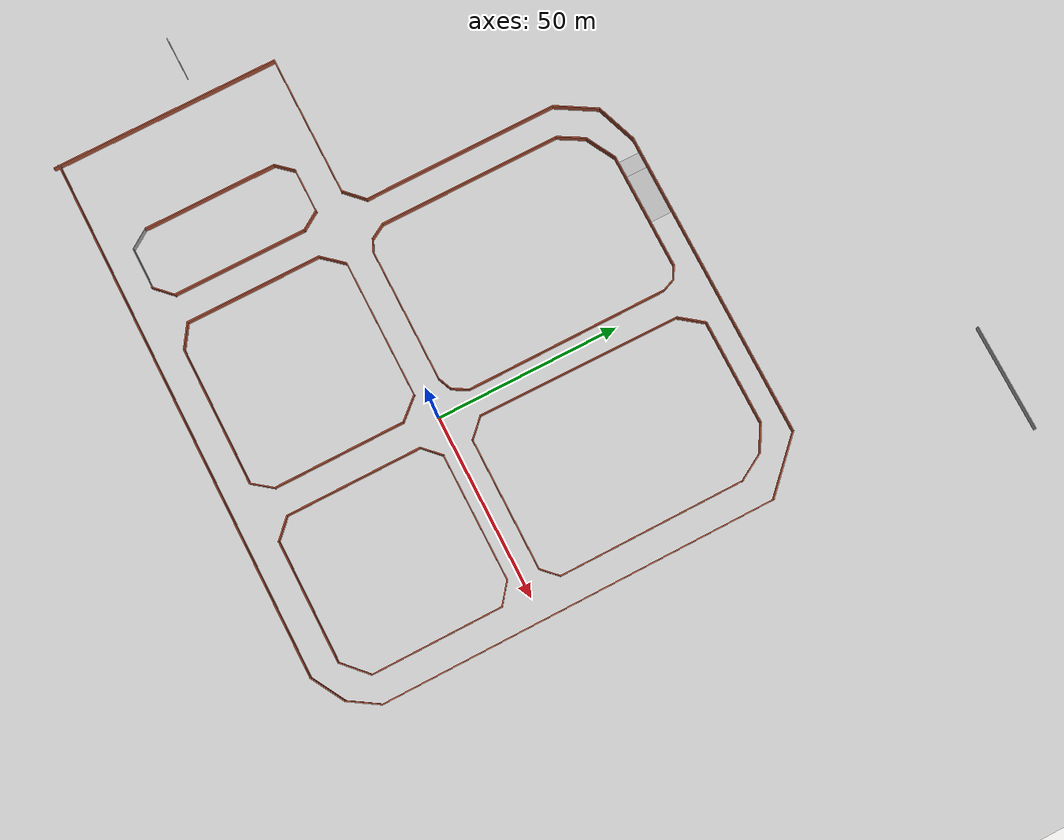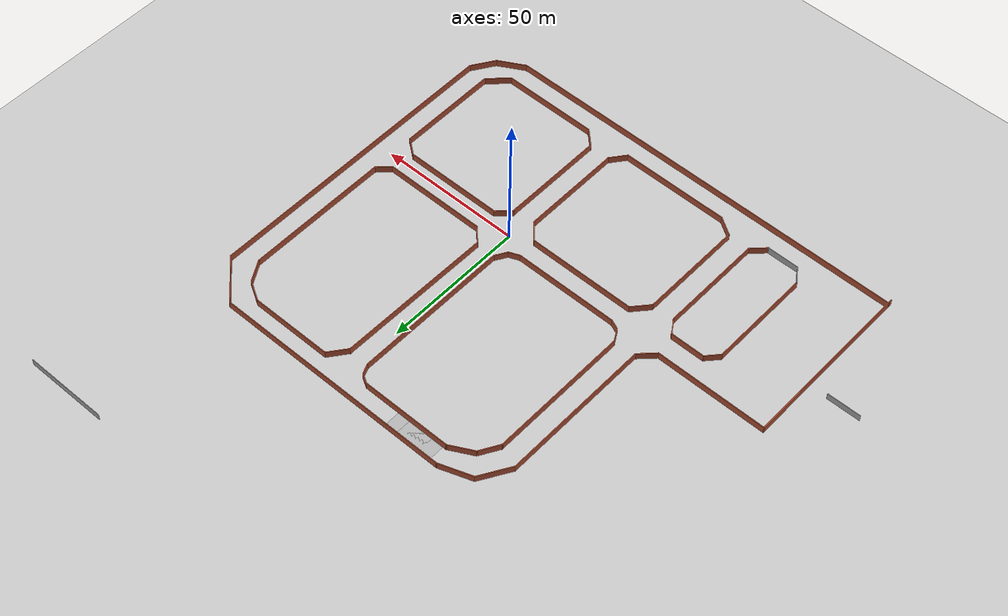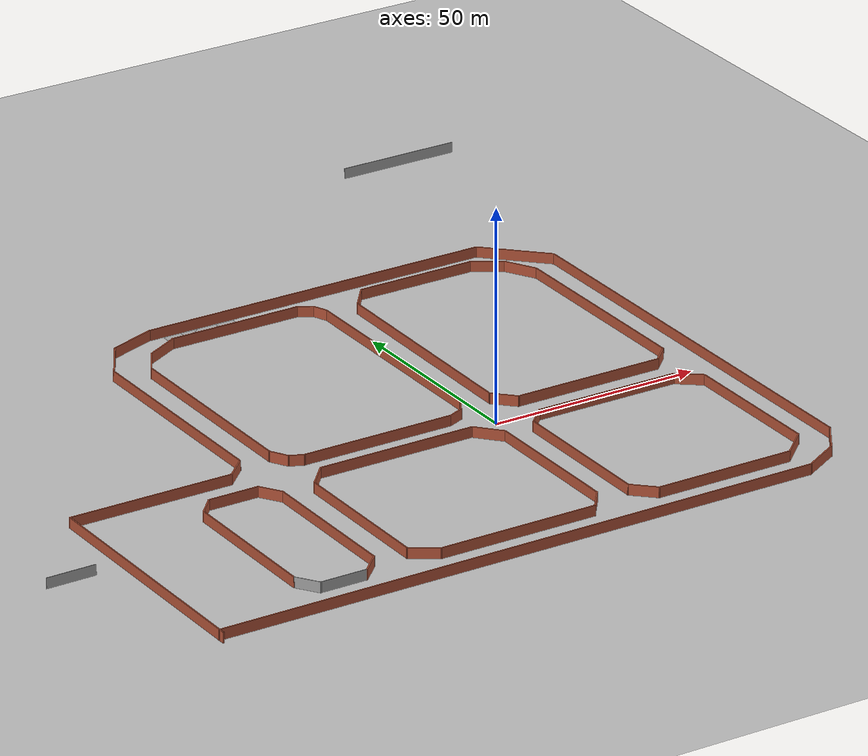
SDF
<sdf version="1.6">
 <world name="default">
  <model name="ground_plane">
   <pose>0 0 -1 0 -0 0</pose>
   <static>1</static>
   <link name="link">
    <collision name="collision">
     <geometry><plane><normal>0 0 1</normal><size>100 100</size></plane></geometry>
     <surface><friction><ode><mu>100</mu><mu2>50</mu2></ode></friction></surface>
    </collision>
    <visual name="visual">
     <cast_shadows>0</cast_shadows>
     <geometry><plane><normal>0 0 1</normal><size>100 100</size></plane></geometry>
     <material>
      <script><uri>file://media/materials/scripts/gazebo.material</uri><name>Gazebo/Grey</name></script>
     </material>
    </visual>
   </link>
  </model>
  <model name="taksiYol">
   <pose>-24.3729 36.1774 0 0 -0 0</pose>
   <link name="Wall_10">
    <collision name="Wall_10_Collision">
     <geometry><box><size>18.0312 0.3 2.5</size></box></geometry>
     <pose>0 0 1.25 0 -0 0</pose>
    </collision>
    <visual name="Wall_10_Visual">
     <pose>0 0 1.25 0 -0 0</pose>
     <geometry><box><size>18.0312 0.3 2.5</size></box></geometry>
     <material>
      <script><uri>file://media/materials/scripts/gazebo.material</uri><name>Gazebo/Bricks</name></script>
      <ambient>0.760784 0.662745 0.627451 1</ambient>
     </material>
    </visual>
    <pose>74.2438 34.0389 0 0 0 -0.77802</pose>
   </link>
   <link name="Wall_100">
    <collision name="Wall_100_Collision">
     <geometry><box><size>28.6496 0.3 2.5</size></box></geometry>
     <pose>0 0 1.25 0 -0 0</pose>
    </collision>
    <visual name="Wall_100_Visual">
     <pose>0 0 1.25 0 -0 0</pose>
     <geometry><box><size>28.6496 0.3 2.5</size></box></geometry>
     <material>
      <script><uri>file://media/materials/scripts/gazebo.material</uri><name>Gazebo/Bricks</name></script>
      <ambient>0.760784 0.662745 0.627451 1</ambient>
     </material>
    </visual>
    <pose>48.1918 34.1744 0 0 -0 3.14068</pose>
   </link>
   <link name="Wall_102">
    <collision name="Wall_102_Collision">
     <geometry><box><size>6.3995 0.3 2.5</size></box></geometry>
     <pose>0 0 1.25 0 -0 0</pose>
    </collision>
    <visual name="Wall_102_Visual">
     <pose>0 0 1.25 0 -0 0</pose>
     <geometry><box><size>6.3995 0.3 2.5</size></box></geometry>
     <material>
      <script><uri>file://media/materials/scripts/gazebo.material</uri><name>Gazebo/Bricks</name></script>
      <ambient>0.760784 0.662745 0.627451 1</ambient>
     </material>
    </visual>
    <pose>-35.7537 -82.7531 0 0 -0 0.785398</pose>
   </link>
   <link name="Wall_103">
    <collision name="Wall_103_Collision">
     <geometry><box><size>36.349 0.3 2.5</size></box></geometry>
     <pose>0 0 1.25 0 -0 0</pose>
    </collision>
    <visual name="Wall_103_Visual">
     <pose>0 0 1.25 0 -0 0</pose>
     <geometry><box><size>36.349 0.3 2.5</size></box></geometry>
     <material>
      <script><uri>file://media/materials/scripts/gazebo.material</uri><name>Gazebo/Bricks</name></script>
      <ambient>0.760784 0.662745 0.627451 1</ambient>
     </material>
    </visual>
    <pose>-33.5972 -62.5721 0 0 -0 1.5708</pose>
   </link>
   <link name="Wall_104">
    <collision name="Wall_104_Collision">
     <geometry><box><size>6.02982 0.3 2.5</size></box></geometry>
     <pose>0 0 1.25 0 -0 0</pose>
    </collision>
    <visual name="Wall_104_Visual">
     <pose>0 0 1.25 0 -0 0</pose>
     <geometry><box><size>6.02982 0.3 2.5</size></box></geometry>
     <material>
      <script><uri>file://media/materials/scripts/gazebo.material</uri><name>Gazebo/Bricks</name></script>
      <ambient>0.760784 0.662745 0.627451 1</ambient>
     </material>
    </visual>
    <pose>-35.1517 -42.1411 0 0 -0 2.14432</pose>
   </link>
   <link name="Wall_106">
    <collision name="Wall_106_Collision">
     <geometry><box><size>12.2451 0.3 2.5</size></box></geometry>
     <pose>0 0 1.25 0 -0 0</pose>
    </collision>
    <visual name="Wall_106_Visual">
     <pose>0 0 1.25 0 -0 0</pose>
     <geometry><box><size>12.2451 0.3 2.5</size></box></geometry>
     <material>
      <script><uri>file://media/materials/scripts/gazebo.material</uri><name>Gazebo/Bricks</name></script>
      <ambient>0.760784 0.662745 0.627451 1</ambient>
     </material>
    </visual>
    <pose>-42.6787 -39.7341 0 0 0 -8.4e-05</pose>
   </link>
   <link name="Wall_19">
    <collision name="Wall_19_Collision">
     <geometry><box><size>144.415 0.3 2.5</size></box></geometry>
     <pose>0 0 1.25 0 -0 0</pose>
    </collision>
    <visual name="Wall_19_Visual">
     <pose>0 0 1.25 0 -0 0</pose>
     <geometry><box><size>144.415 0.3 2.5</size></box></geometry>
     <material>
      <script><uri>file://media/materials/scripts/gazebo.material</uri><name>Gazebo/Bricks</name></script>
      <ambient>0.760784 0.662745 0.627451 1</ambient>
     </material>
    </visual>
    <pose>-5.1646 -92.3029 0 0 0 -3.14128</pose>
   </link>
   <link name="Wall_2">
    <collision name="Wall_2_Collision">
     <geometry><box><size>62.289 0.3 2.5</size></box></geometry>
     <pose>0 0 1.25 0 -0 0</pose>
    </collision>
    <visual name="Wall_2_Visual">
     <pose>0 0 1.25 0 -0 0</pose>
     <geometry><box><size>62.289 0.3 2.5</size></box></geometry>
     <material>
      <script><uri>file://media/materials/scripts/gazebo.material</uri><name>Gazebo/Bricks</name></script>
      <ambient>0.760784 0.662745 0.627451 1</ambient>
     </material>
    </visual>
    <pose>-77.1823 -62.6861 0 0 -0 1.57079</pose>
   </link>
   <link name="Wall_20">
    <collision name="Wall_20_Collision">
     <geometry><box><size>0.388213 0.15 2.5</size></box></geometry>
     <pose>0 0 1.25 0 -0 0</pose>
    </collision>
    <visual name="Wall_20_Visual">
     <pose>0 0 1.25 0 -0 0</pose>
     <geometry><box><size>0.388213 0.15 2.5</size></box></geometry>
     <material>
      <script><uri>file://media/materials/scripts/gazebo.material</uri><name>Gazebo/Grey</name></script>
      <ambient>1 1 1 1</ambient>
     </material>
    </visual>
    <pose>-77.0291 -92.219 0 0 -0 1.10246</pose>
   </link>
   <link name="Wall_28">
    <collision name="Wall_28_Collision">
     <geometry><box><size>107.778 0.3 2.5</size></box></geometry>
     <pose>0 0 1.25 0 -0 0</pose>
    </collision>
    <visual name="Wall_28_Visual">
     <pose>0 0 1.25 0 -0 0</pose>
     <geometry><box><size>107.778 0.3 2.5</size></box></geometry>
     <material>
      <script><uri>file://media/materials/scripts/gazebo.material</uri><name>Gazebo/Bricks</name></script>
      <ambient>0.760784 0.662745 0.627451 1</ambient>
     </material>
    </visual>
    <pose>80.5423 -25.9226 0 0 -0 1.57049</pose>
   </link>
   <link name="Wall_30">
    <collision name="Wall_30_Collision">
     <geometry><box><size>12.1991 0.3 2.5</size></box></geometry>
     <pose>0 0 1.25 0 -0 0</pose>
    </collision>
    <visual name="Wall_30_Visual">
     <pose>0 0 1.25 0 -0 0</pose>
     <geometry><box><size>12.1991 0.3 2.5</size></box></geometry>
     <material>
      <script><uri>file://media/materials/scripts/gazebo.material</uri><name>Gazebo/Bricks</name></script>
      <ambient>0.760784 0.662745 0.627451 1</ambient>
     </material>
    </visual>
    <pose>-30.4626 31.2128 0 0 -0 1.03362</pose>
   </link>
   <link name="Wall_31">
    <collision name="Wall_31_Collision">
     <geometry><box><size>11.9805 0.3 2.5</size></box></geometry>
     <pose>0 0 1.25 0 -0 0</pose>
    </collision>
    <visual name="Wall_31_Visual">
     <pose>0 0 1.25 0 -0 0</pose>
     <geometry><box><size>11.9805 0.3 2.5</size></box></geometry>
     <material>
      <script><uri>file://media/materials/scripts/gazebo.material</uri><name>Gazebo/Bricks</name></script>
      <ambient>0.760784 0.662745 0.627451 1</ambient>
     </material>
    </visual>
    <pose>-21.9197 38.2929 0 0 -0 0.34379</pose>
   </link>
   <link name="Wall_33">
    <collision name="Wall_33_Collision">
     <geometry><box><size>31.9 0.3 2.5</size></box></geometry>
     <pose>0 0 1.25 0 -0 0</pose>
    </collision>
    <visual name="Wall_33_Visual">
     <pose>0 0 1.25 0 -0 0</pose>
     <geometry><box><size>31.9 0.3 2.5</size></box></geometry>
     <material>
      <script><uri>file://media/materials/scripts/gazebo.material</uri><name>Gazebo/Bricks</name></script>
      <ambient>0.760784 0.662745 0.627451 1</ambient>
     </material>
    </visual>
    <pose>1.55483 33.8794 0 0 -0 0</pose>
   </link>
   <link name="Wall_34">
    <collision name="Wall_34_Collision">
     <geometry><box><size>3.8606 0.3 2.5</size></box></geometry>
     <pose>0 0 1.25 0 -0 0</pose>
    </collision>
    <visual name="Wall_34_Visual">
     <pose>0 0 1.25 0 -0 0</pose>
     <geometry><box><size>3.8606 0.3 2.5</size></box></geometry>
     <material>
      <script><uri>file://media/materials/scripts/gazebo.material</uri><name>Gazebo/Bricks</name></script>
      <ambient>0.760784 0.662745 0.627451 1</ambient>
     </material>
    </visual>
    <pose>18.8908 32.9794 0 0 0 -0.530015</pose>
   </link>
   <link name="Wall_35">
    <collision name="Wall_35_Collision">
     <geometry><box><size>3.92162 0.3 2.5</size></box></geometry>
     <pose>0 0 1.25 0 -0 0</pose>
    </collision>
    <visual name="Wall_35_Visual">
     <pose>0 0 1.25 0 -0 0</pose>
     <geometry><box><size>3.92162 0.3 2.5</size></box></geometry>
     <material>
      <script><uri>file://media/materials/scripts/gazebo.material</uri><name>Gazebo/Bricks</name></script>
      <ambient>0.760784 0.662745 0.627451 1</ambient>
     </material>
    </visual>
    <pose>21.1248 30.4084 0 0 0 -1.17511</pose>
   </link>
   <link name="Wall_36">
    <collision name="Wall_36_Collision">
     <geometry><box><size>55.1498 0.3 2.5</size></box></geometry>
     <pose>0 0 1.25 0 -0 0</pose>
    </collision>
    <visual name="Wall_36_Visual">
     <pose>0 0 1.25 0 -0 0</pose>
     <geometry><box><size>55.1498 0.3 2.5</size></box></geometry>
     <material>
      <script><uri>file://media/materials/scripts/gazebo.material</uri><name>Gazebo/Bricks</name></script>
      <ambient>0.760784 0.662745 0.627451 1</ambient>
     </material>
    </visual>
    <pose>21.7828 1.3124 0 0 0 -1.57225</pose>
   </link>
   <link name="Wall_37">
    <collision name="Wall_37_Collision">
     <geometry><box><size>4.90024 0.3 2.5</size></box></geometry>
     <pose>0 0 1.25 0 -0 0</pose>
    </collision>
    <visual name="Wall_37_Visual">
     <pose>0 0 1.25 0 -0 0</pose>
     <geometry><box><size>4.90024 0.3 2.5</size></box></geometry>
     <material>
      <script><uri>file://media/materials/scripts/gazebo.material</uri><name>Gazebo/Bricks</name></script>
      <ambient>0.760784 0.662745 0.627451 1</ambient>
     </material>
    </visual>
    <pose>20.5928 -28.1046 0 0 0 -2.09436</pose>
   </link>
   <link name="Wall_38">
    <collision name="Wall_38_Collision">
     <geometry><box><size>4.21544 0.3 2.5</size></box></geometry>
     <pose>0 0 1.25 0 -0 0</pose>
    </collision>
    <visual name="Wall_38_Visual">
     <pose>0 0 1.25 0 -0 0</pose>
     <geometry><box><size>4.21544 0.3 2.5</size></box></geometry>
     <material>
      <script><uri>file://media/materials/scripts/gazebo.material</uri><name>Gazebo/Bricks</name></script>
      <ambient>0.760784 0.662745 0.627451 1</ambient>
     </material>
    </visual>
    <pose>17.6418 -30.8641 0 0 0 -2.73875</pose>
   </link>
   <link name="Wall_39">
    <collision name="Wall_39_Collision">
     <geometry><box><size>36.6502 0.3 2.5</size></box></geometry>
     <pose>0 0 1.25 0 -0 0</pose>
    </collision>
    <visual name="Wall_39_Visual">
     <pose>0 0 1.25 0 -0 0</pose>
     <geometry><box><size>36.6502 0.3 2.5</size></box></geometry>
     <material>
      <script><uri>file://media/materials/scripts/gazebo.material</uri><name>Gazebo/Bricks</name></script>
      <ambient>0.760784 0.662745 0.627451 1</ambient>
     </material>
    </visual>
    <pose>-2.33417 -31.6316 0 0 -0 3.14159</pose>
   </link>
   <link name="Wall_40">
    <collision name="Wall_40_Collision">
     <geometry><box><size>3.68766 0.3 2.5</size></box></geometry>
     <pose>0 0 1.25 0 -0 0</pose>
    </collision>
    <visual name="Wall_40_Visual">
     <pose>0 0 1.25 0 -0 0</pose>
     <geometry><box><size>3.68766 0.3 2.5</size></box></geometry>
     <material>
      <script><uri>file://media/materials/scripts/gazebo.material</uri><name>Gazebo/Bricks</name></script>
      <ambient>0.760784 0.662745 0.627451 1</ambient>
     </material>
    </visual>
    <pose>-22.0652 -30.9621 0 0 -0 2.73527</pose>
   </link>
   <link name="Wall_41">
    <collision name="Wall_41_Collision">
     <geometry><box><size>4.90013 0.3 2.5</size></box></geometry>
     <pose>0 0 1.25 0 -0 0</pose>
    </collision>
    <visual name="Wall_41_Visual">
     <pose>0 0 1.25 0 -0 0</pose>
     <geometry><box><size>4.90013 0.3 2.5</size></box></geometry>
     <material>
      <script><uri>file://media/materials/scripts/gazebo.material</uri><name>Gazebo/Bricks</name></script>
      <ambient>0.760784 0.662745 0.627451 1</ambient>
     </material>
    </visual>
    <pose>-24.7712 -28.3006 0 0 -0 2.09436</pose>
   </link>
   <link name="Wall_42">
    <collision name="Wall_42_Collision">
     <geometry><box><size>49.6501 0.3 2.5</size></box></geometry>
     <pose>0 0 1.25 0 -0 0</pose>
    </collision>
    <visual name="Wall_42_Visual">
     <pose>0 0 1.25 0 -0 0</pose>
     <geometry><box><size>49.6501 0.3 2.5</size></box></geometry>
     <material>
      <script><uri>file://media/materials/scripts/gazebo.material</uri><name>Gazebo/Bricks</name></script>
      <ambient>0.760784 0.662745 0.627451 1</ambient>
     </material>
    </visual>
    <pose>-25.9212 -1.6336 0 0 -0 1.5708</pose>
   </link>
   <link name="Wall_43">
    <collision name="Wall_43_Collision">
     <geometry><box><size>7.90018 0.3 2.5</size></box></geometry>
     <pose>0 0 1.25 0 -0 0</pose>
    </collision>
    <visual name="Wall_43_Visual">
     <pose>0 0 1.25 0 -0 0</pose>
     <geometry><box><size>7.90018 0.3 2.5</size></box></geometry>
     <material>
      <script><uri>file://media/materials/scripts/gazebo.material</uri><name>Gazebo/Bricks</name></script>
      <ambient>0.760784 0.662745 0.627451 1</ambient>
     </material>
    </visual>
    <pose>-24.0212 26.3324 0 0 -0 1.04721</pose>
   </link>
   <link name="Wall_44">
    <collision name="Wall_44_Collision">
     <geometry><box><size>9.25237 0.3 2.5</size></box></geometry>
     <pose>0 0 1.25 0 -0 0</pose>
    </collision>
    <visual name="Wall_44_Visual">
     <pose>0 0 1.25 0 -0 0</pose>
     <geometry><box><size>9.25237 0.3 2.5</size></box></geometry>
     <material>
      <script><uri>file://media/materials/scripts/gazebo.material</uri><name>Gazebo/Bricks</name></script>
      <ambient>0.760784 0.662745 0.627451 1</ambient>
     </material>
    </visual>
    <pose>-18.1832 31.7514 0 0 -0 0.495424</pose>
   </link>
   <link name="Wall_48">
    <collision name="Wall_48_Collision">
     <geometry><box><size>11.7505 0.15 2.5</size></box></geometry>
     <pose>0 0 1.25 0 -0 0</pose>
    </collision>
    <visual name="Wall_48_Visual">
     <pose>0 0 1.25 0 -0 0</pose>
     <geometry><box><size>11.7505 0.15 2.5</size></box></geometry>
     <material>
      <script><uri>file://media/materials/scripts/gazebo.material</uri><name>Gazebo/Grey</name></script>
      <ambient>1 1 1 1</ambient>
     </material>
    </visual>
    <pose>-89.3267 -53.5426 0 0 -0 0.008844</pose>
   </link>
   <link name="Wall_52">
    <collision name="Wall_52_Collision">
     <geometry><box><size>11.25 0.15 2.5</size></box></geometry>
     <pose>0 0 1.25 0 -0 0</pose>
    </collision>
    <visual name="Wall_52_Visual">
     <pose>0 0 1.25 0 -0 0</pose>
     <geometry><box><size>11.25 0.15 2.5</size></box></geometry>
     <material>
      <script><uri>file://media/materials/scripts/gazebo.material</uri><name>Gazebo/Grey</name></script>
      <ambient>1 1 1 1</ambient>
     </material>
    </visual>
    <pose>-43.4601 -84.9096 0 0 0 -3.14159</pose>
   </link>
   <link name="Wall_53">
    <collision name="Wall_53_Collision">
     <geometry><box><size>6.25105 0.15 2.5</size></box></geometry>
     <pose>0 0 1.25 0 -0 0</pose>
    </collision>
    <visual name="Wall_53_Visual">
     <pose>0 0 1.25 0 -0 0</pose>
     <geometry><box><size>6.25105 0.15 2.5</size></box></geometry>
     <material>
      <script><uri>file://media/materials/scripts/gazebo.material</uri><name>Gazebo/Grey</name></script>
      <ambient>1 1 1 1</ambient>
     </material>
    </visual>
    <pose>-50.6298 -82.4944 0 0 -0 2.17074</pose>
   </link>
   <link name="Wall_54">
    <collision name="Wall_54_Collision">
     <geometry><box><size>36.4 0.3 2.5</size></box></geometry>
     <pose>0 0 1.25 0 -0 0</pose>
    </collision>
    <visual name="Wall_54_Visual">
     <pose>0 0 1.25 0 -0 0</pose>
     <geometry><box><size>36.4 0.3 2.5</size></box></geometry>
     <material>
      <script><uri>file://media/materials/scripts/gazebo.material</uri><name>Gazebo/Bricks</name></script>
      <ambient>0.760784 0.662745 0.627451 1</ambient>
     </material>
    </visual>
    <pose>-52.3522 -61.9266 0 0 -0 1.5708</pose>
   </link>
   <link name="Wall_55">
    <collision name="Wall_55_Collision">
     <geometry><box><size>5.85534 0.3 2.5</size></box></geometry>
     <pose>0 0 1.25 0 -0 0</pose>
    </collision>
    <visual name="Wall_55_Visual">
     <pose>0 0 1.25 0 -0 0</pose>
     <geometry><box><size>5.85534 0.3 2.5</size></box></geometry>
     <material>
      <script><uri>file://media/materials/scripts/gazebo.material</uri><name>Gazebo/Bricks</name></script>
      <ambient>0.760784 0.662745 0.627451 1</ambient>
     </material>
    </visual>
    <pose>-50.5017 -41.8051 0 0 -0 0.841687</pose>
   </link>
   <link name="Wall_57">
    <collision name="Wall_57_Collision">
     <geometry><box><size>37.9 0.3 2.5</size></box></geometry>
     <pose>0 0 1.25 0 -0 0</pose>
    </collision>
    <visual name="Wall_57_Visual">
     <pose>0 0 1.25 0 -0 0</pose>
     <geometry><box><size>37.9 0.3 2.5</size></box></geometry>
     <material>
      <script><uri>file://media/materials/scripts/gazebo.material</uri><name>Gazebo/Bricks</name></script>
      <ambient>0.760784 0.662745 0.627451 1</ambient>
     </material>
    </visual>
    <pose>-2.17517 -38.8776 0 0 -0 0</pose>
   </link>
   <link name="Wall_58">
    <collision name="Wall_58_Collision">
     <geometry><box><size>7.63118 0.3 2.5</size></box></geometry>
     <pose>0 0 1.25 0 -0 0</pose>
    </collision>
    <visual name="Wall_58_Visual">
     <pose>0 0 1.25 0 -0 0</pose>
     <geometry><box><size>7.63118 0.3 2.5</size></box></geometry>
     <material>
      <script><uri>file://media/materials/scripts/gazebo.material</uri><name>Gazebo/Bricks</name></script>
      <ambient>0.760784 0.662745 0.627451 1</ambient>
     </material>
    </visual>
    <pose>19.0648 -41.6131 0 0 0 -0.842432</pose>
   </link>
   <link name="Wall_59">
    <collision name="Wall_59_Collision">
     <geometry><box><size>35.65 0.3 2.5</size></box></geometry>
     <pose>0 0 1.25 0 -0 0</pose>
    </collision>
    <visual name="Wall_59_Visual">
     <pose>0 0 1.25 0 -0 0</pose>
     <geometry><box><size>35.65 0.3 2.5</size></box></geometry>
     <material>
      <script><uri>file://media/materials/scripts/gazebo.material</uri><name>Gazebo/Bricks</name></script>
      <ambient>0.760784 0.662745 0.627451 1</ambient>
     </material>
    </visual>
    <pose>21.5048 -62.0236 0 0 0 -1.5708</pose>
   </link>
   <link name="Wall_60">
    <collision name="Wall_60_Collision">
     <geometry><box><size>6.64794 0.3 2.5</size></box></geometry>
     <pose>0 0 1.25 0 -0 0</pose>
    </collision>
    <visual name="Wall_60_Visual">
     <pose>0 0 1.25 0 -0 0</pose>
     <geometry><box><size>6.64794 0.3 2.5</size></box></geometry>
     <material>
      <script><uri>file://media/materials/scripts/gazebo.material</uri><name>Gazebo/Bricks</name></script>
      <ambient>0.760784 0.662745 0.627451 1</ambient>
     </material>
    </visual>
    <pose>19.5738 -82.2176 0 0 0 -2.22482</pose>
   </link>
   <link name="Wall_61">
    <collision name="Wall_61_Collision">
     <geometry><box><size>37.8997 0.3 2.5</size></box></geometry>
     <pose>0 0 1.25 0 -0 0</pose>
    </collision>
    <visual name="Wall_61_Visual">
     <pose>0 0 1.25 0 -0 0</pose>
     <geometry><box><size>37.8997 0.3 2.5</size></box></geometry>
     <material>
      <script><uri>file://media/materials/scripts/gazebo.material</uri><name>Gazebo/Bricks</name></script>
      <ambient>0.760784 0.662745 0.627451 1</ambient>
     </material>
    </visual>
    <pose>-1.15717 -84.7166 0 0 -0 3.14053</pose>
   </link>
   <link name="Wall_62">
    <collision name="Wall_62_Collision">
     <geometry><box><size>7.28015 0.3 2.5</size></box></geometry>
     <pose>0 0 1.25 0 -0 0</pose>
    </collision>
    <visual name="Wall_62_Visual">
     <pose>0 0 1.25 0 -0 0</pose>
     <geometry><box><size>7.28015 0.3 2.5</size></box></geometry>
     <material>
      <script><uri>file://media/materials/scripts/gazebo.material</uri><name>Gazebo/Bricks</name></script>
      <ambient>0.760784 0.662745 0.627451 1</ambient>
     </material>
    </visual>
    <pose>-22.8797 -82.7886 0 0 -0 2.56321</pose>
   </link>
   <link name="Wall_63">
    <collision name="Wall_63_Collision">
     <geometry><box><size>36.8614 0.3 2.5</size></box></geometry>
     <pose>0 0 1.25 0 -0 0</pose>
    </collision>
    <visual name="Wall_63_Visual">
     <pose>0 0 1.25 0 -0 0</pose>
     <geometry><box><size>36.8614 0.3 2.5</size></box></geometry>
     <material>
      <script><uri>file://media/materials/scripts/gazebo.material</uri><name>Gazebo/Bricks</name></script>
      <ambient>0.760784 0.662745 0.627451 1</ambient>
     </material>
    </visual>
    <pose>-25.8022 -62.6001 0 0 -0 1.5708</pose>
   </link>
   <link name="Wall_64">
    <collision name="Wall_64_Collision">
     <geometry><box><size>7.49247 0.3 2.5</size></box></geometry>
     <pose>0 0 1.25 0 -0 0</pose>
    </collision>
    <visual name="Wall_64_Visual">
     <pose>0 0 1.25 0 -0 0</pose>
     <geometry><box><size>7.49247 0.3 2.5</size></box></geometry>
     <material>
      <script><uri>file://media/materials/scripts/gazebo.material</uri><name>Gazebo/Bricks</name></script>
      <ambient>0.760784 0.662745 0.627451 1</ambient>
     </material>
    </visual>
    <pose>-23.4307 -41.6161 0 0 -0 0.850724</pose>
   </link>
   <link name="Wall_69">
    <collision name="Wall_69_Collision">
     <geometry><box><size>39.15 0.3 2.5</size></box></geometry>
     <pose>0 0 1.25 0 -0 0</pose>
    </collision>
    <visual name="Wall_69_Visual">
     <pose>0 0 1.25 0 -0 0</pose>
     <geometry><box><size>39.15 0.3 2.5</size></box></geometry>
     <material>
      <script><uri>file://media/materials/scripts/gazebo.material</uri><name>Gazebo/Bricks</name></script>
      <ambient>0.760784 0.662745 0.627451 1</ambient>
     </material>
    </visual>
    <pose>-57.7572 -31.6916 0 0 -0 0</pose>
   </link>
   <link name="Wall_70">
    <collision name="Wall_70_Collision">
     <geometry><box><size>7.12222 0.3 2.5</size></box></geometry>
     <pose>0 0 1.25 0 -0 0</pose>
    </collision>
    <visual name="Wall_70_Visual">
     <pose>0 0 1.25 0 -0 0</pose>
     <geometry><box><size>7.12222 0.3 2.5</size></box></geometry>
     <material>
      <script><uri>file://media/materials/scripts/gazebo.material</uri><name>Gazebo/Bricks</name></script>
      <ambient>0.760784 0.662745 0.627451 1</ambient>
     </material>
    </visual>
    <pose>-35.9107 -29.2891 0 0 -0 0.78146</pose>
   </link>
   <link name="Wall_72">
    <collision name="Wall_72_Collision">
     <geometry><box><size>53.2861 0.3 2.5</size></box></geometry>
     <pose>0 0 1.25 0 -0 0</pose>
    </collision>
    <visual name="Wall_72_Visual">
     <pose>0 0 1.25 0 -0 0</pose>
     <geometry><box><size>53.2861 0.3 2.5</size></box></geometry>
     <material>
      <script><uri>file://media/materials/scripts/gazebo.material</uri><name>Gazebo/Bricks</name></script>
      <ambient>0.760784 0.662745 0.627451 1</ambient>
     </material>
    </visual>
    <pose>-33.5187 -0.393597 0 0 -0 1.57191</pose>
   </link>
   <link name="Wall_73">
    <collision name="Wall_73_Collision">
     <geometry><box><size>0.181339 0.15 2.5</size></box></geometry>
     <pose>0 0 1.25 0 -0 0</pose>
    </collision>
    <visual name="Wall_73_Visual">
     <pose>0 0 1.25 0 -0 0</pose>
     <geometry><box><size>0.181339 0.15 2.5</size></box></geometry>
     <material>
      <script><uri>file://media/materials/scripts/gazebo.material</uri><name>Gazebo/Grey</name></script>
      <ambient>1 1 1 1</ambient>
     </material>
    </visual>
    <pose>-33.5434 26.0845 0 0 0 -1.25908</pose>
   </link>
   <link name="Wall_75">
    <collision name="Wall_75_Collision">
     <geometry><box><size>34.6499 0.3 2.5</size></box></geometry>
     <pose>0 0 1.25 0 -0 0</pose>
    </collision>
    <visual name="Wall_75_Visual">
     <pose>0 0 1.25 0 -0 0</pose>
     <geometry><box><size>34.6499 0.3 2.5</size></box></geometry>
     <material>
      <script><uri>file://media/materials/scripts/gazebo.material</uri><name>Gazebo/Bricks</name></script>
      <ambient>0.760784 0.662745 0.627451 1</ambient>
     </material>
    </visual>
    <pose>50.6358 -39.2886 0 0 -0 0</pose>
   </link>
   <link name="Wall_76">
    <collision name="Wall_76_Collision">
     <geometry><box><size>6.94108 0.3 2.5</size></box></geometry>
     <pose>0 0 1.25 0 -0 0</pose>
    </collision>
    <visual name="Wall_76_Visual">
     <pose>0 0 1.25 0 -0 0</pose>
     <geometry><box><size>6.94108 0.3 2.5</size></box></geometry>
     <material>
      <script><uri>file://media/materials/scripts/gazebo.material</uri><name>Gazebo/Bricks</name></script>
      <ambient>0.760784 0.662745 0.627451 1</ambient>
     </material>
    </visual>
    <pose>70.4218 -41.3401 0 0 0 -0.665969</pose>
   </link>
   <link name="Wall_77">
    <collision name="Wall_77_Collision">
     <geometry><box><size>35.65 0.3 2.5</size></box></geometry>
     <pose>0 0 1.25 0 -0 0</pose>
    </collision>
    <visual name="Wall_77_Visual">
     <pose>0 0 1.25 0 -0 0</pose>
     <geometry><box><size>35.65 0.3 2.5</size></box></geometry>
     <material>
      <script><uri>file://media/materials/scripts/gazebo.material</uri><name>Gazebo/Bricks</name></script>
      <ambient>0.760784 0.662745 0.627451 1</ambient>
     </material>
    </visual>
    <pose>73.0328 -61.0666 0 0 0 -1.5708</pose>
   </link>
   <link name="Wall_78">
    <collision name="Wall_78_Collision">
     <geometry><box><size>8.98794 0.3 2.5</size></box></geometry>
     <pose>0 0 1.25 0 -0 0</pose>
    </collision>
    <visual name="Wall_78_Visual">
     <pose>0 0 1.25 0 -0 0</pose>
     <geometry><box><size>8.98794 0.3 2.5</size></box></geometry>
     <material>
      <script><uri>file://media/materials/scripts/gazebo.material</uri><name>Gazebo/Bricks</name></script>
      <ambient>0.760784 0.662745 0.627451 1</ambient>
     </material>
    </visual>
    <pose>69.8698 -81.7191 0 0 0 -2.38639</pose>
   </link>
   <link name="Wall_79">
    <collision name="Wall_79_Collision">
     <geometry><box><size>33.225 0.3 2.5</size></box></geometry>
     <pose>0 0 1.25 0 -0 0</pose>
    </collision>
    <visual name="Wall_79_Visual">
     <pose>0 0 1.25 0 -0 0</pose>
     <geometry><box><size>33.225 0.3 2.5</size></box></geometry>
     <material>
      <script><uri>file://media/materials/scripts/gazebo.material</uri><name>Gazebo/Bricks</name></script>
      <ambient>0.760784 0.662745 0.627451 1</ambient>
     </material>
    </visual>
    <pose>50.2443 -84.6666 0 0 -0 3.13977</pose>
   </link>
   <link name="Wall_80">
    <collision name="Wall_80_Collision">
     <geometry><box><size>6.88701 0.3 2.5</size></box></geometry>
     <pose>0 0 1.25 0 -0 0</pose>
    </collision>
    <visual name="Wall_80_Visual">
     <pose>0 0 1.25 0 -0 0</pose>
     <geometry><box><size>6.88701 0.3 2.5</size></box></geometry>
     <material>
      <script><uri>file://media/materials/scripts/gazebo.material</uri><name>Gazebo/Bricks</name></script>
      <ambient>0.760784 0.662745 0.627451 1</ambient>
     </material>
    </visual>
    <pose>31.4123 -82.3491 0 0 -0 2.3738</pose>
   </link>
   <link name="Wall_81">
    <collision name="Wall_81_Collision">
     <geometry><box><size>36.867 0.3 2.5</size></box></geometry>
     <pose>0 0 1.25 0 -0 0</pose>
    </collision>
    <visual name="Wall_81_Visual">
     <pose>0 0 1.25 0 -0 0</pose>
     <geometry><box><size>36.867 0.3 2.5</size></box></geometry>
     <material>
      <script><uri>file://media/materials/scripts/gazebo.material</uri><name>Gazebo/Bricks</name></script>
      <ambient>0.760784 0.662745 0.627451 1</ambient>
     </material>
    </visual>
    <pose>29.0728 -61.7781 0 0 -0 1.56916</pose>
   </link>
   <link name="Wall_82">
    <collision name="Wall_82_Collision">
     <geometry><box><size>6.36848 0.3 2.5</size></box></geometry>
     <pose>0 0 1.25 0 -0 0</pose>
    </collision>
    <visual name="Wall_82_Visual">
     <pose>0 0 1.25 0 -0 0</pose>
     <geometry><box><size>6.36848 0.3 2.5</size></box></geometry>
     <material>
      <script><uri>file://media/materials/scripts/gazebo.material</uri><name>Gazebo/Bricks</name></script>
      <ambient>0.760784 0.662745 0.627451 1</ambient>
     </material>
    </visual>
    <pose>31.2598 -41.3606 0 0 -0 0.780038</pose>
   </link>
   <link name="Wall_86">
    <collision name="Wall_86_Collision">
     <geometry><box><size>29 0.15 2.5</size></box></geometry>
     <pose>0 0 1.25 0 -0 0</pose>
    </collision>
    <visual name="Wall_86_Visual">
     <pose>0 0 1.25 0 -0 0</pose>
     <geometry><box><size>29 0.15 2.5</size></box></geometry>
     <material>
      <script><uri>file://media/materials/scripts/gazebo.material</uri><name>Gazebo/Grey</name></script>
      <ambient>1 1 1 1</ambient>
     </material>
    </visual>
    <pose>80.7024 93.7556 0 0 -0 0</pose>
   </link>
   <link name="Wall_88">
    <collision name="Wall_88_Collision">
     <geometry><box><size>8.4071 0.3 2.5</size></box></geometry>
     <pose>0 0 1.25 0 -0 0</pose>
    </collision>
    <visual name="Wall_88_Visual">
     <pose>0 0 1.25 0 -0 0</pose>
     <geometry><box><size>8.4071 0.3 2.5</size></box></geometry>
     <material>
      <script><uri>file://media/materials/scripts/gazebo.material</uri><name>Gazebo/Bricks</name></script>
      <ambient>0.760784 0.662745 0.627451 1</ambient>
     </material>
    </visual>
    <pose>70.9738 26.8239 0 0 0 -1.0477</pose>
   </link>
   <link name="Wall_89">
    <collision name="Wall_89_Collision">
     <geometry><box><size>50.874 0.3 2.5</size></box></geometry>
     <pose>0 0 1.25 0 -0 0</pose>
    </collision>
    <visual name="Wall_89_Visual">
     <pose>0 0 1.25 0 -0 0</pose>
     <geometry><box><size>50.874 0.3 2.5</size></box></geometry>
     <material>
      <script><uri>file://media/materials/scripts/gazebo.material</uri><name>Gazebo/Bricks</name></script>
      <ambient>0.760784 0.662745 0.627451 1</ambient>
     </material>
    </visual>
    <pose>72.9988 -1.9746 0 0 0 -1.5708</pose>
   </link>
   <link name="Wall_9">
    <collision name="Wall_9_Collision">
     <geometry><box><size>84.65 0.3 2.5</size></box></geometry>
     <pose>0 0 1.25 0 -0 0</pose>
    </collision>
    <visual name="Wall_9_Visual">
     <pose>0 0 1.25 0 -0 0</pose>
     <geometry><box><size>84.65 0.3 2.5</size></box></geometry>
     <material>
      <script><uri>file://media/materials/scripts/gazebo.material</uri><name>Gazebo/Bricks</name></script>
      <ambient>0.760784 0.662745 0.627451 1</ambient>
     </material>
    </visual>
    <pose>25.7538 40.2614 0 0 -0 0</pose>
   </link>
   <link name="Wall_90">
    <collision name="Wall_90_Collision">
     <geometry><box><size>5.8763 0.3 2.5</size></box></geometry>
     <pose>0 0 1.25 0 -0 0</pose>
    </collision>
    <visual name="Wall_90_Visual">
     <pose>0 0 1.25 0 -0 0</pose>
     <geometry><box><size>5.8763 0.3 2.5</size></box></geometry>
     <material>
      <script><uri>file://media/materials/scripts/gazebo.material</uri><name>Gazebo/Bricks</name></script>
      <ambient>0.760784 0.662745 0.627451 1</ambient>
     </material>
    </visual>
    <pose>71.0188 -29.2246 0 0 0 -2.36051</pose>
   </link>
   <link name="Wall_91">
    <collision name="Wall_91_Collision">
     <geometry><box><size>36.0139 0.3 2.5</size></box></geometry>
     <pose>0 0 1.25 0 -0 0</pose>
    </collision>
    <visual name="Wall_91_Visual">
     <pose>0 0 1.25 0 -0 0</pose>
     <geometry><box><size>36.0139 0.3 2.5</size></box></geometry>
     <material>
      <script><uri>file://media/materials/scripts/gazebo.material</uri><name>Gazebo/Bricks</name></script>
      <ambient>0.760784 0.662745 0.627451 1</ambient>
     </material>
    </visual>
    <pose>51.1818 -31.1706 0 0 -0 3.14064</pose>
   </link>
   <link name="Wall_92">
    <collision name="Wall_92_Collision">
     <geometry><box><size>6.64996 0.3 2.5</size></box></geometry>
     <pose>0 0 1.25 0 -0 0</pose>
    </collision>
    <visual name="Wall_92_Visual">
     <pose>0 0 1.25 0 -0 0</pose>
     <geometry><box><size>6.64996 0.3 2.5</size></box></geometry>
     <material>
      <script><uri>file://media/materials/scripts/gazebo.material</uri><name>Gazebo/Bricks</name></script>
      <ambient>0.760784 0.662745 0.627451 1</ambient>
     </material>
    </visual>
    <pose>31.0798 -28.9081 0 0 -0 2.35608</pose>
   </link>
   <link name="Wall_93">
    <collision name="Wall_93_Collision">
     <geometry><box><size>55.171 0.3 2.5</size></box></geometry>
     <pose>0 0 1.25 0 -0 0</pose>
    </collision>
    <visual name="Wall_93_Visual">
     <pose>0 0 1.25 0 -0 0</pose>
     <geometry><box><size>55.171 0.3 2.5</size></box></geometry>
     <material>
      <script><uri>file://media/materials/scripts/gazebo.material</uri><name>Gazebo/Bricks</name></script>
      <ambient>0.760784 0.662745 0.627451 1</ambient>
     </material>
    </visual>
    <pose>29.1208 0.771402 0 0 -0 1.56037</pose>
   </link>
   <link name="Wall_94">
    <collision name="Wall_94_Collision">
     <geometry><box><size>7.69044 0.3 2.5</size></box></geometry>
     <pose>0 0 1.25 0 -0 0</pose>
    </collision>
    <visual name="Wall_94_Visual">
     <pose>0 0 1.25 0 -0 0</pose>
     <geometry><box><size>7.69044 0.3 2.5</size></box></geometry>
     <material>
      <script><uri>file://media/materials/scripts/gazebo.material</uri><name>Gazebo/Bricks</name></script>
      <ambient>0.760784 0.662745 0.627451 1</ambient>
     </material>
    </visual>
    <pose>31.6453 31.1454 0 0 -0 0.920041</pose>
   </link>
   <link name="Wall_96">
    <collision name="Wall_96_Collision">
     <geometry><box><size>10.3703 0.3 2.5</size></box></geometry>
     <pose>0 0 1.25 0 -0 0</pose>
    </collision>
    <visual name="Wall_96_Visual">
     <pose>0 0 1.25 0 -0 0</pose>
     <geometry><box><size>10.3703 0.3 2.5</size></box></geometry>
     <material>
      <script><uri>file://media/materials/scripts/gazebo.material</uri><name>Gazebo/Bricks</name></script>
      <ambient>0.760784 0.662745 0.627451 1</ambient>
     </material>
    </visual>
    <pose>71.2663 -89.7856 0 0 -0 0.518432</pose>
   </link>
   <link name="Wall_97">
    <collision name="Wall_97_Collision">
     <geometry><box><size>9.35938 0.3 2.5</size></box></geometry>
     <pose>0 0 1.25 0 -0 0</pose>
    </collision>
    <visual name="Wall_97_Visual">
     <pose>0 0 1.25 0 -0 0</pose>
     <geometry><box><size>9.35938 0.3 2.5</size></box></geometry>
     <material>
      <script><uri>file://media/materials/scripts/gazebo.material</uri><name>Gazebo/Bricks</name></script>
      <ambient>0.760784 0.662745 0.627451 1</ambient>
     </material>
    </visual>
    <pose>78.0828 -83.4761 0 0 -0 1.00116</pose>
   </link>
   <link name="Wall_99">
    <collision name="Wall_99_Collision">
     <geometry><box><size>7.91321 0.3 2.5</size></box></geometry>
     <pose>0 0 1.25 0 -0 0</pose>
    </collision>
    <visual name="Wall_99_Visual">
     <pose>0 0 1.25 0 -0 0</pose>
     <geometry><box><size>7.91321 0.3 2.5</size></box></geometry>
     <material>
      <script><uri>file://media/materials/scripts/gazebo.material</uri><name>Gazebo/Bricks</name></script>
      <ambient>0.760784 0.662745 0.627451 1</ambient>
     </material>
    </visual>
    <pose>65.6578 32.2484 0 0 -0 2.61505</pose>
   </link>
   <static>1</static>
  </model>
  <model name="road_4_clone_clone_1_clone_12">
   <link name="body">
    <visual name="visual">
     <geometry><mesh><uri>file://road.dae</uri></mesh></geometry>
     <material><shader type="pixel"/></material>
    </visual>
   </link>
   <static>1</static>
   <pose>-26.5191 73.2365 0 0 -0 1.57</pose>
  </model>
  <model name="road_4_clone_clone_1_clone_13">
   <link name="body">
    <visual name="visual">
     <geometry><mesh><uri>file://road.dae</uri></mesh></geometry>
     <material><shader type="pixel"/></material>
    </visual>
   </link>
   <static>1</static>
   <pose>-30.8342 73.255 0 0 -0 1.57</pose>
  </model>
 </world>
</sdf>
